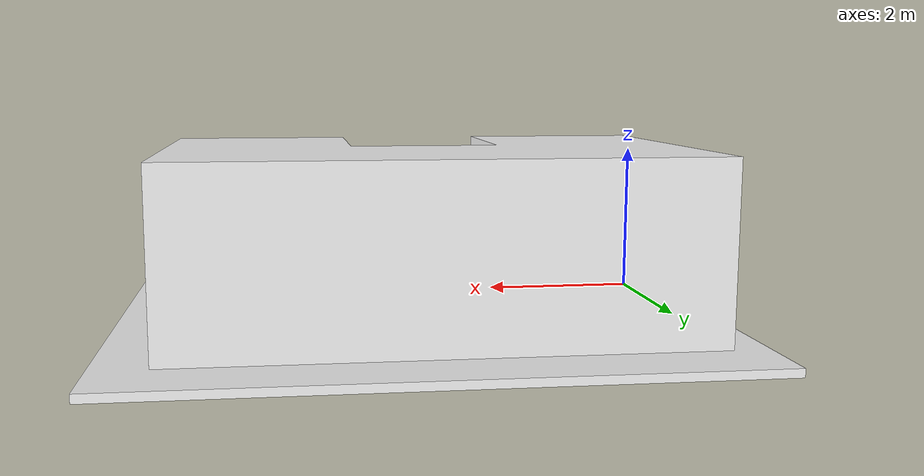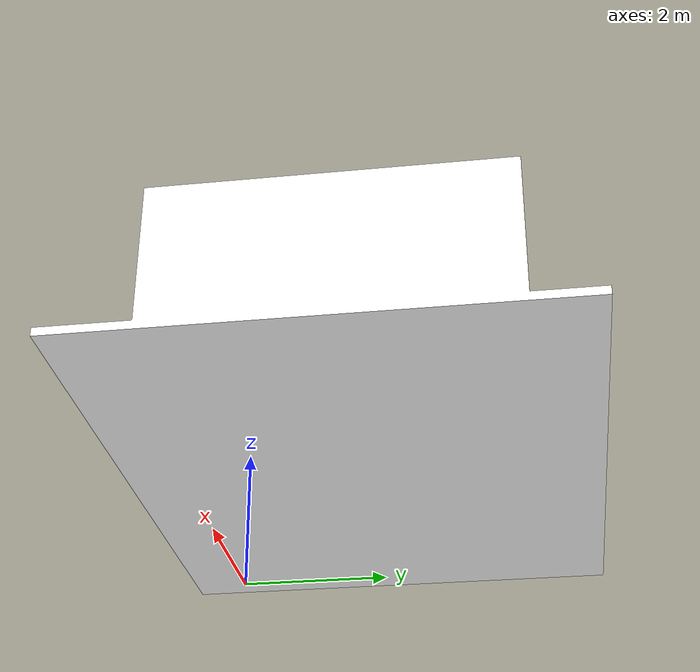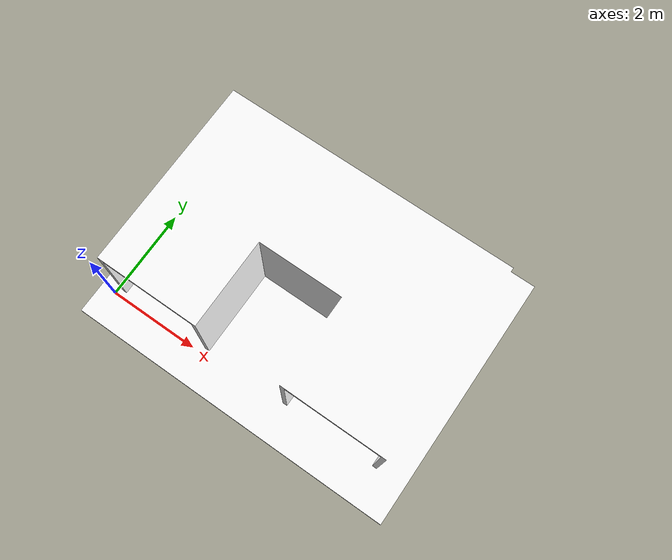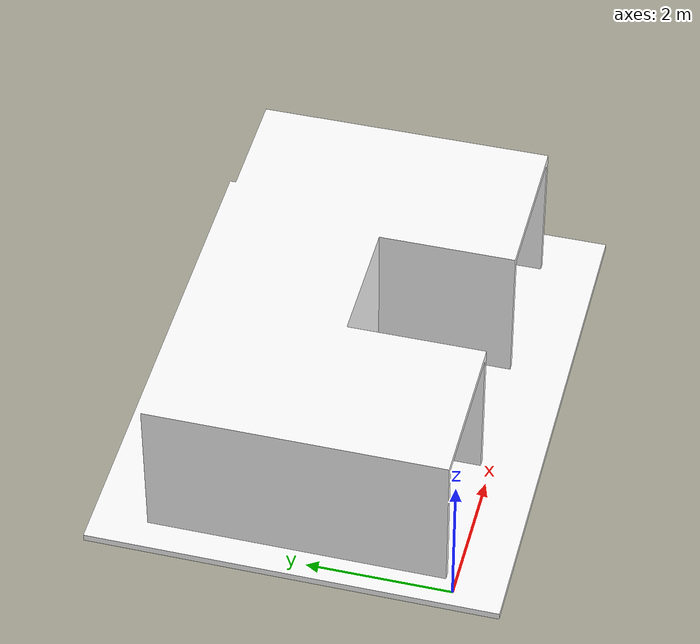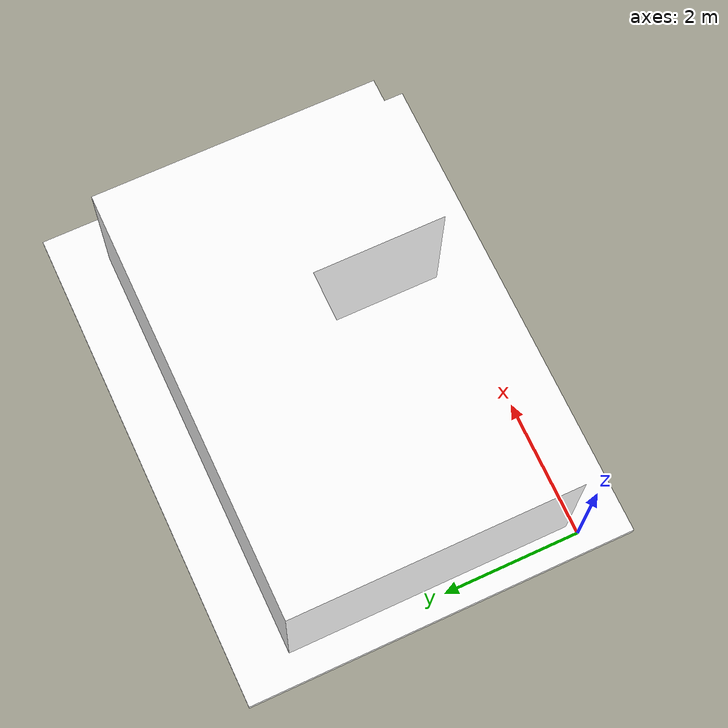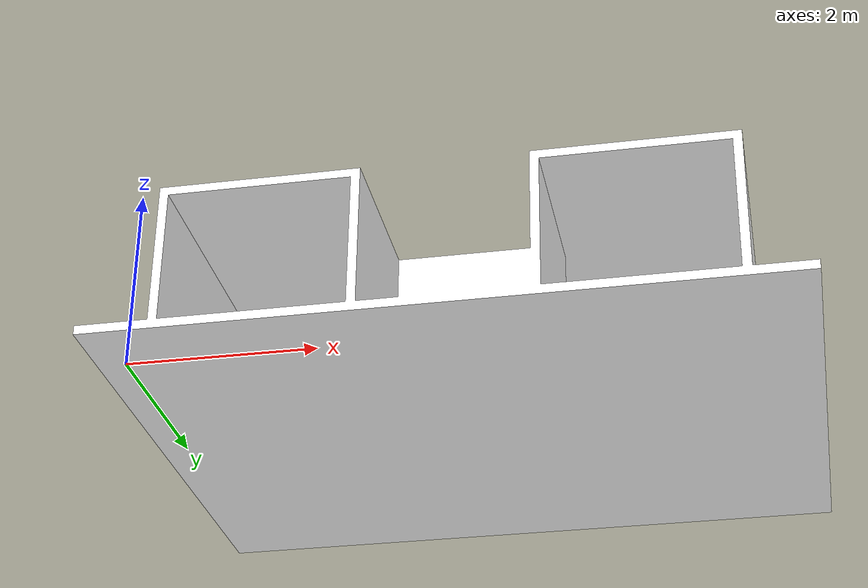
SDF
<?xml version='1.0'?>
<sdf version='1.6'>
    <model name="cen3">
        <link name="cen3_link">
            <pose>0 0 0 0 0 0</pose>
            <collision name="cen3_collision">
                <geometry>
                    <mesh>
                        <uri>model://cen_missao2_3/meshes/cen_ind_missao2_3.dae</uri>
                    </mesh>
                </geometry>
            </collision>
            <visual name="cen3_visual">
                <cast_shadows>1</cast_shadows>
                <geometry>
                    <mesh>
                        <uri>model://cen_missao2_3/meshes/cen_ind_missao2_3.dae</uri>
                    </mesh>
                </geometry>
            </visual>
        </link>
    </model>
</sdf>
